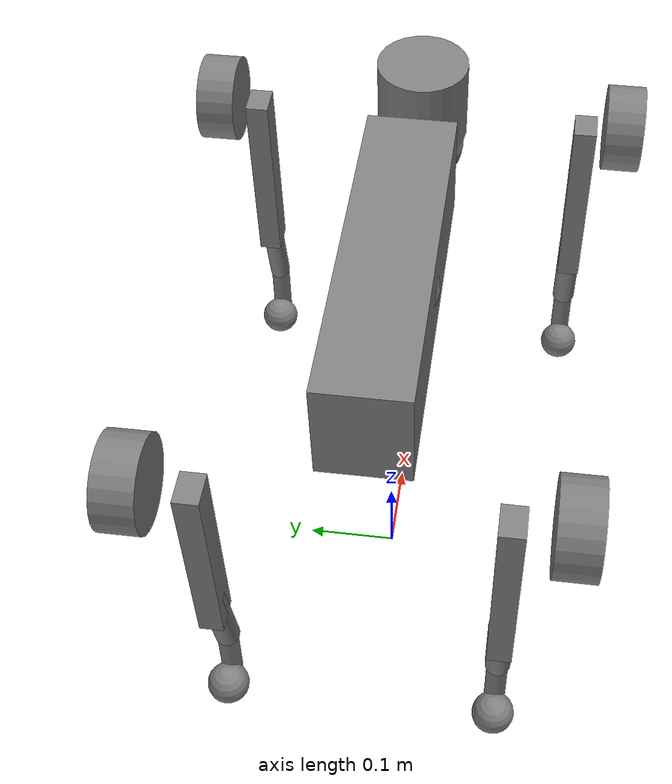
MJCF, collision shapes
<mujoco model="go2">
    <compiler angle="radian" autolimits="true"/>

    <option cone="elliptic" impratio="100"/>

    <default>
        <default class="go2">
            <geom friction="0.6" margin="0.001" condim="1"/>
            <joint axis="0 1 0" damping="0.1" armature="0.01" frictionloss="0.1"/>
            <motor ctrlrange="-12 12"/>
            <default class="abduction">
                <joint axis="1 0 0" range="-1.0472 1.0472"/>

                <default class="abduction_mirrored">
                    <joint axis="-1 0 0" range="-1.0472 1.0472"/>
                </default>
            </default>
            <default class="hip">
                <default class="shoulder_mirrored">
                    <joint range="-1.5708 3.4907"/>
                </default>
                <default class="shoulder">
                    <joint range="-3.4907 3.5708"/>
                </default>
            </default>
            <default class="knee">
                <joint range="-2.7227 2.83776"/>
                <motor ctrlrange="-12 12"/>
            </default>
            <default class="knee_mirrored">
                <joint range="-2.83776 2.7227"/>
                <motor ctrlrange="-12 12"/>
            </default>
            <default class="visual">
                <geom type="mesh" contype="0" conaffinity="0" group="2"/>
            </default>
            <default class="collision">
                <geom group="3"/>
                <default class="foot">
                    <geom size="0.022" pos="-0.002 0 -0.18" priority="1" solimp="0.015 1 0.031" condim="6"
                          friction="0.8 0.02 0.01"/>
                </default>
            </default>
        </default>
    </default>

    <asset>
        <material name="metal" rgba=".9 .95 .95 1"/>
        <material name="black" rgba="0 0 0 1"/>
        <material name="white" rgba="1 1 1 1"/>
        <material name="gray" rgba="0.671705 0.692426 0.774270 1"/>

        <mesh file="assets/base_0.obj"/>
        <mesh file="assets/base_1.obj"/>
        <mesh file="assets/base_2.obj"/>
        <mesh file="assets/base_3.obj"/>
        <mesh file="assets/base_4.obj"/>
        <mesh file="assets/hip_0.obj"/>
        <mesh file="assets/hip_1.obj"/>
        <mesh file="assets/robstride_legs.stl"/>
        <mesh scale="1 1 0.8" file="assets/thigh_1.obj"/>
        <mesh file="assets/robstride_legs_mirrored.stl"/>
        <mesh scale="1 1 0.8" file="assets/calf.stl"/>
        <mesh scale="1 1 0.8" file="assets/calf_1.obj"/>
        <mesh scale="1 1 0.8" file="assets/calf_mirror.stl"/>
        <mesh scale="1 1 0.8" file="assets/calf_mirror_1.obj"/>
        <mesh file="assets/foot.obj"/>

    </asset>

    <asset>
      <material name="default_material" rgba="0.7 0.7 0.7 1" />
      <material name="collision_material" rgba="1.0 0.28 0.1 0.9" />
      <mesh name="main_body.stl" file="assets/main_body.stl" />
      <mesh name="shoulder.stl" file="assets/shoulder.stl" />
      <mesh name="left_upper_leg.stl" file="assets/left_upper_leg.stl" />
      <mesh name="lower_leg.stl" file="assets/lower_leg.stl" />
      <mesh name="right_upper_leg.stl" file="assets/right_upper_leg.stl" />
    </asset>

    <worldbody>
        <body name="base_link" pos="0 0 0.445" childclass="go2">
            <inertial pos="-0.021112 0 -0.005366" quat="-0.000543471 0.713435 -0.00173769 0.700719" mass="3.921"
                      diaginertia="0.107027 0.0980771 0.0244531"/>
            <freejoint/>
            <geom mesh="main_body.stl" pos="0.05 0 0" quat="-0.5 -0.5 -0.5 -0.5" material="gray" class="visual"/>
            <geom name="debug_origin_sphere" type="sphere" size="0.05" class="visual"/>
            <geom size="0.1881 0.04675 0.057" type="box" class="collision"/>
            <geom size="0.05 0.045" pos="0.285 0 0.01" type="cylinder" class="collision"/>
            <geom size="0.047" pos="0.293 0 -0.06" class="collision"/>
            <site name="imu" pos="-0.02557 0 0.04232"/>
            <body name="FL_shoulder" pos="0.27 0.142 0">
                <inertial pos="-0.0054 0.00194 -0.000105" quat="0.497014 0.499245 0.505462 0.498237" mass="0.678"
                          diaginertia="0.00088403 0.000596003 0.000479967"/>
                <joint name="FL_shoulder_joint" class="abduction_mirrored" axis="-1 0 0"/>
                <geom mesh="hip_0" material="metal" class="visual"/>
                <geom mesh="hip_1" material="gray" class="visual"/>
                <geom size="0.046 0.02" pos="0 0.08 0" quat="1 1 0 0" type="cylinder" class="collision"/>
                <body name="FL_thigh" pos="0 0.04 0">
                    <inertial pos="-0.00374 0.0223 -0.135" quat="0.829533 0.0847635 -0.0200632 0.551623" mass="0.579"
                              diaginertia="0.00594973 0.00584149 0.000878787"/>
                    <joint name="FL_thigh_joint" class="shoulder_mirrored" axis="0 -1 0"/>
                    <geom mesh="robstride_legs" material="metal" class="visual"/>
                    <geom size="0.1065 0.01225 0.017" pos="0 0 -0.1065" quat="0.707107 0 0.707107 0" type="box"
                          class="collision"/>
                    <body name="FL_calf" pos="0 0 -0.17">
                        <inertial pos="0.00629595 0.000622121 -0.075" quat="0.703508 -0.00450087 0.00154099 0.710672"
                                  mass="0.136" diaginertia="0.0014901 0.00146356 5.31397e-05"/>
                        <joint name="FL_calf_joint" class="knee"/>
                        <geom mesh="calf" material="gray" class="visual"/>
                        <geom mesh="calf_1" material="black" class="visual"/>
                        <geom size="0.012 0.06" pos="0.008 0 -0.06" quat="0.994493 0 -0.104807 0" type="cylinder"
                              class="collision"/>
                        <geom size="0.011 0.0325" pos="0.02 0 -0.148" quat="0.999688 0 0.0249974 0" type="cylinder"
                              class="collision"/>
                        <geom pos="0 0 -0.17" mesh="foot" class="visual" material="black"/>
                        <geom name="FL_foot_collision" class="foot"/>
                    </body>
                </body>
            </body>
            <body name="FR_shoulder" pos="0.27 -0.142 0">
                <inertial pos="-0.0054 -0.00194 -0.000105" quat="0.498237 0.505462 0.499245 0.497014" mass="0.678"
                          diaginertia="0.00088403 0.000596003 0.000479967"/>
                <joint name="FR_shoulder_joint" class="abduction_mirrored" axis="-1 0 0"/>
                <geom mesh="hip_0" material="metal" class="visual" quat="4.63268e-05 1 0 0"/>
                <geom mesh="hip_1" material="gray" class="visual" quat="4.63268e-05 1 0 0"/>
                <geom size="0.046 0.02" pos="0 -0.08 0" quat="0.707107 0.707107 0 0" type="cylinder" class="collision"/>
                <body name="FR_thigh" pos="0 -0.04 0">
                    <inertial pos="-0.00374 0.0223 -0.135" quat="0.551623 -0.0200632 0.0847635 0.829533" mass="0.579"
                              diaginertia="0.00594973 0.00584149 0.000878787"/>
                    <joint name="FR_thigh_joint" class="shoulder"/>
                    <geom mesh="robstride_legs_mirrored" material="metal" class="visual"/>
                    <geom size="0.1065 0.01225 0.017" pos="0 0 -0.1065" quat="0.707107 0 0.707107 0" type="box"
                          class="collision"/>
                    <body name="FR_calf" pos="0 0 -0.17">
                        <inertial pos="0.00629595 0.000622121 -0.075" quat="0.703508 -0.00450087 0.00154099 0.710672"
                                  mass="0.136" diaginertia="0.0014901 0.00146356 5.31397e-05"/>
                        <joint name="FR_calf_joint" class="knee_mirrored" axis="0 -1 0"/>
                        <geom mesh="calf_mirror" material="gray" class="visual"/>
                        <geom mesh="calf_mirror_1" material="black" class="visual"/>
                        <geom size="0.013 0.06" pos="0.01 0 -0.06" quat="0.995004 0 -0.0998334 0" type="cylinder"
                              class="collision"/>
                        <geom size="0.011 0.0325" pos="0.02 0 -0.148" quat="0.999688 0 0.0249974 0" type="cylinder"
                              class="collision"/>
                        <geom pos="0 0 -0.17" mesh="foot" class="visual" material="black"/>
                        <geom name="FR_foot_collision" class="foot"/>
                    </body>
                </body>
            </body>
            <body name="BL_shoulder" pos="-0.26 0.115 0">
                <inertial pos="0.0054 0.00194 -0.000105" quat="0.505462 0.498237 0.497014 0.499245" mass="0.678"
                          diaginertia="0.00088403 0.000596003 0.000479967"/>
                <joint name="BL_shoulder_joint" class="abduction"/>
                <geom mesh="hip_0" material="metal" class="visual" quat="4.63268e-05 0 1 0"/>
                <geom mesh="hip_1" material="gray" class="visual" quat="4.63268e-05 0 1 0"/>
                <geom size="0.046 0.02" pos="0 0.08 0" quat="0.707107 0.707107 0 0" type="cylinder" class="collision"/>
                <body name="BL_thigh" pos="0 0.025 0">
                    <inertial pos="-0.00374 0.0223 -0.135" quat="0.829533 0.0847635 -0.0200632 0.551623" mass="0.579"
                              diaginertia="0.00594973 0.00584149 0.000878787"/>
                    <joint name="BL_thigh_joint" class="shoulder_mirrored" axis="0 -1 0"/>
                    <geom mesh="robstride_legs" material="metal" class="visual"/>
                    <geom size="0.1065 0.01225 0.017" pos="0 0 -0.1065" quat="0.707107 0 0.707107 0" type="box"
                          class="collision"/>
                    <body name="BL_calf" pos="0 0 -0.17">
                        <inertial pos="0.00629595 0.000622121 -0.075" quat="0.703508 -0.00450087 0.00154099 0.710672"
                                  mass="0.136" diaginertia="0.0014901 0.00146356 5.31397e-05"/>
                        <joint name="BL_calf_joint" class="knee"/>
                        <geom mesh="calf" material="gray" class="visual"/>
                        <geom mesh="calf_1" material="black" class="visual"/>
                        <geom size="0.013 0.06" pos="0.01 0 -0.06" quat="0.995004 0 -0.0998334 0" type="cylinder"
                              class="collision"/>
                        <geom size="0.011 0.0325" pos="0.02 0 -0.148" quat="0.999688 0 0.0249974 0" type="cylinder"
                              class="collision"/>
                        <geom pos="0 0 -0.17" mesh="foot" class="visual" material="black"/>
                        <geom name="BL_foot_collision" class="foot"/>
                    </body>
                </body>
            </body>
            <body name="BR_shoulder" pos="-0.26 -0.115 0">
                <inertial pos="0.0054 -0.00194 -0.000105" quat="0.499245 0.497014 0.498237 0.505462" mass="0.678"
                          diaginertia="0.00088403 0.000596003 0.000479967"/>
                <joint name="BR_shoulder_joint" class="abduction" axis="1 0 0"/>
                <geom mesh="hip_0" material="metal" class="visual" quat="2.14617e-09 4.63268e-05 4.63268e-05 -1"/>
                <geom mesh="hip_1" material="gray" class="visual" quat="2.14617e-09 4.63268e-05 4.63268e-05 -1"/>
                <geom size="0.046 0.02" pos="0 -0.08 0" quat="0.707107 0.707107 0 0" type="cylinder" class="collision"/>
                <body name="BR_thigh" pos="0 -0.025 0">
                    <inertial pos="-0.00374 0.0223 -0.135" quat="0.551623 -0.0200632 0.0847635 0.829533" mass="0.579"
                              diaginertia="0.00594973 0.00584149 0.000878787"/>
                    <joint name="BR_thigh_joint" class="shoulder"/>
                    <geom mesh="robstride_legs_mirrored" material="metal" class="visual"/>
                    <geom size="0.1065 0.01225 0.017" pos="0 0 -0.1065" quat="0.707107 0 0.707107 0" type="box"
                          class="collision"/>
                    <body name="BR_calf" pos="0 0 -0.17">
                        <inertial pos="0.00629595 0.000622121 -0.075" quat="0.703508 -0.00450087 0.00154099 0.710672"
                                  mass="0.136" diaginertia="0.0014901 0.00146356 5.31397e-05"/>
                        <joint name="BR_calf_joint" class="knee_mirrored" axis="0 -1 0"/>
                        <geom mesh="calf_mirror" material="gray" class="visual"/>
                        <geom mesh="calf_mirror_1" material="black" class="visual"/>
                        <geom size="0.013 0.06" pos="0.01 0 -0.06" quat="0.995004 0 -0.0998334 0" type="cylinder"
                              class="collision"/>
                        <geom size="0.011 0.0325" pos="0.02 0 -0.148" quat="0.999688 0 0.0249974 0" type="cylinder"
                              class="collision"/>
                        <geom pos="0 0 -0.17" mesh="foot" class="visual" material="black"/>
                        <geom name="BR_foot_collision" class="foot"/>
                    </body>
                </body>
            </body>
        </body>
    </worldbody>

    <actuator>
        <motor class="abduction" name="FL_shoulder_joint" joint="FL_shoulder_joint"/>
        <motor class="hip" name="FL_thigh_joint" joint="FL_thigh_joint"/>
        <motor class="knee" name="FL_calf_joint" joint="FL_calf_joint"/>
        <motor class="abduction" name="FR_shoulder_joint" joint="FR_shoulder_joint"/>
        <motor class="hip" name="FR_thigh_joint" joint="FR_thigh_joint"/>
        <motor class="knee" name="FR_calf_joint" joint="FR_calf_joint"/>
        <motor class="abduction" name="BL_shoulder_joint" joint="BL_shoulder_joint"/>
        <motor class="hip" name="BL_thigh_joint" joint="BL_thigh_joint"/>
        <motor class="knee" name="BL_calf_joint" joint="BL_calf_joint"/>
        <motor class="abduction" name="BR_shoulder_joint" joint="BR_shoulder_joint"/>
        <motor class="hip" name="BR_thigh_joint" joint="BR_thigh_joint"/>
        <motor class="knee" name="BR_calf_joint" joint="BR_calf_joint"/>
    </actuator>

    <keyframe>
        <key name="home" qpos="0 0 0.27 1 0 0 0 0 -1.57 -2.72 0 1.57 2.72 0 -1.57 -2.72 0 1.57 2.72"
             ctrl="0 0.9 -1.8 0 0.9 -1.8 0 0.9 -1.8 0 0.9 -1.8"/>
    </keyframe>
</mujoco>
